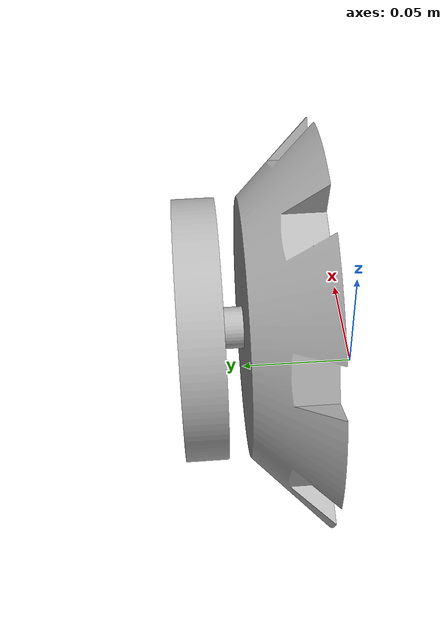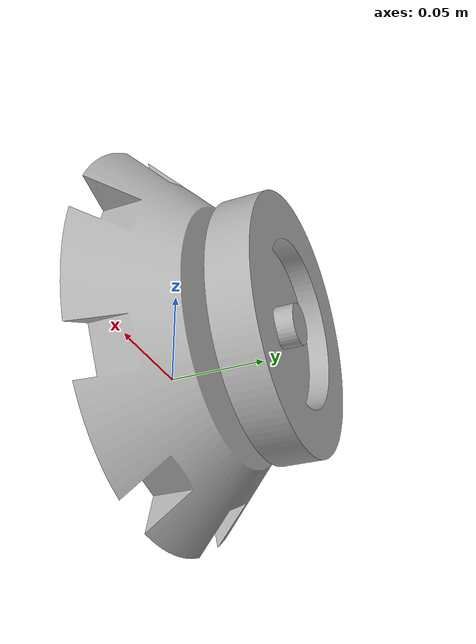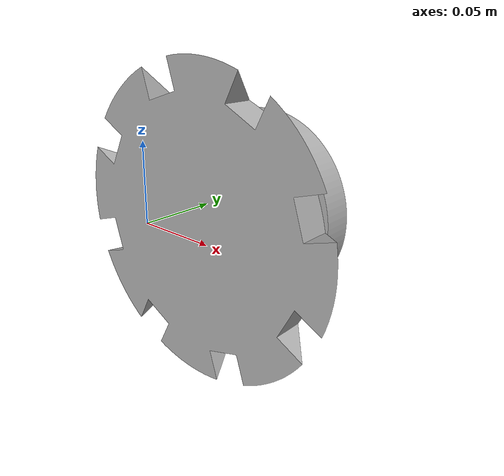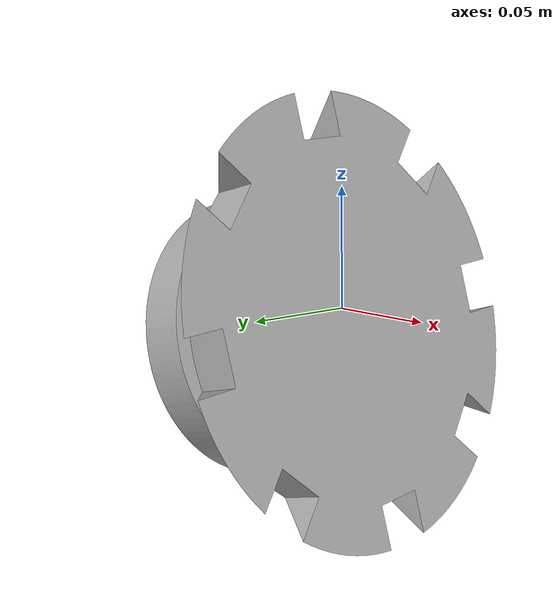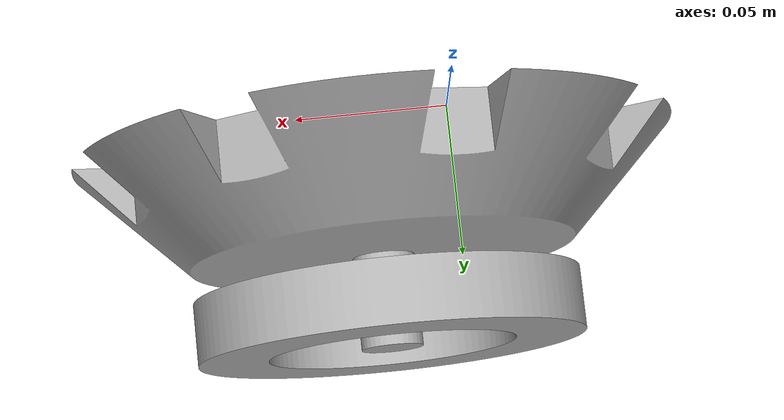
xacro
<?xml version="1.0" ?>
<robot name="sander" xmlns:xacro="http://www.ros.org/wiki/xacro">

<xacro:include filename="$(find sander_description)/urdf/materials.xacro" />
<xacro:include filename="$(find sander_description)/urdf/sander.trans" />
<xacro:include filename="$(find sander_description)/urdf/sander.gazebo" />
<link name="base_link">
  <inertial>
    <origin rpy="0 0 0" xyz="0.02575854113896432 0.0674452387292379 1.8171533751102836e-17"/>
    <mass value="1.5074343299628055"/>
    <inertia ixx="0.001771" ixy="0.0" ixz="0.0" iyy="0.003446" iyz="0.0" izz="0.001771"/>
  </inertial>
  <visual>
    <origin rpy="0 0 0" xyz="0 0 0"/>
    <geometry>
      <mesh filename="package://sander_description/meshes/base_link.stl" scale="0.001 0.001 0.001"/>
    </geometry>
    <material name="silver_default"/>
  </visual>
  <collision>
    <origin rpy="0 0 0" xyz="0 0 0"/>
    <geometry>
      <mesh filename="package://sander_description/meshes/base_link.stl" scale="0.001 0.001 0.001"/>
    </geometry>
  </collision>
</link>

<link name="rotor_1">
  <inertial>
    <origin rpy="0 0 0" xyz="-4.588610676113658e-07 -0.029741689185755874 7.65931719005647e-15"/>
    <mass value="5.404977646600705"/>
    <inertia ixx="0.009297" ixy="0.0" ixz="-0.0" iyy="0.017373" iyz="-0.0" izz="0.009297"/>
  </inertial>
  <visual>
    <origin rpy="0 0 0" xyz="-0.025759 -0.058672 -0.0"/>
    <geometry>
      <mesh filename="package://sander_description/meshes/rotor_1.stl" scale="0.001 0.001 0.001"/>
    </geometry>
    <material name="silver_default"/>
  </visual>
  <collision>
    <origin rpy="0 0 0" xyz="-0.025759 -0.058672 -0.0"/>
    <geometry>
      <mesh filename="package://sander_description/meshes/rotor_1.stl" scale="0.001 0.001 0.001"/>
    </geometry>
  </collision>
</link>

<joint name="Rev1" type="continuous">
  <origin rpy="0 0 0" xyz="0.025759 0.058672 0.0"/>
  <parent link="base_link"/>
  <child link="rotor_1"/>
  <axis xyz="0.0 -1.0 -0.0"/>
</joint>

</robot>

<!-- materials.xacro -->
<robot name="sander" xmlns:xacro="http://www.ros.org/wiki/xacro" >

<material name="silver_default">
  <color rgba="0.700 0.700 0.700 1.000"/>
</material>

</robot>

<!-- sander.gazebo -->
<robot name="sander" xmlns:xacro="http://www.ros.org/wiki/xacro" >

<xacro:property name="body_color" value="Gazebo/Silver" />

<gazebo>
  <plugin filename="libgazebo_ros_control.so" name="control"/>
</gazebo>
<gazebo reference="base_link">
  <material>${body_color}</material>
  <mu1>0.2</mu1>
  <mu2>0.2</mu2>
  <selfCollide>true</selfCollide>
  <gravity>true</gravity>
</gazebo>

<gazebo reference="rotor_1">
  <material>${body_color}</material>
  <mu1>0.2</mu1>
  <mu2>0.2</mu2>
  <selfCollide>true</selfCollide>
</gazebo>

</robot>
